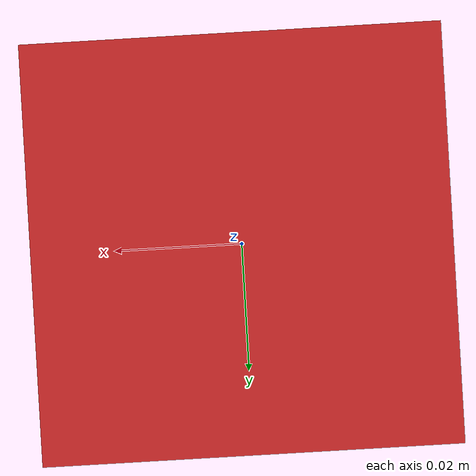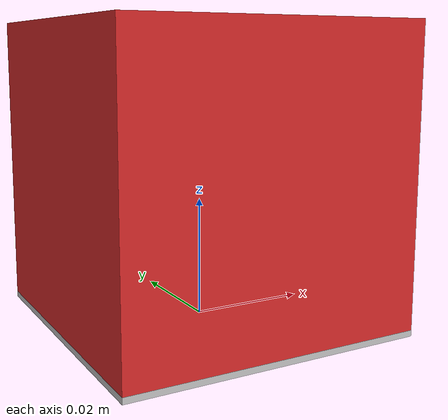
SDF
<?xml version='1.0'?>
<sdf version='1.6'>
  <model name='stone'>
    <link name='face'>
      <inertial>
        <pose>0 0 0.02 0 0 0</pose>
        <mass>0.01</mass>
        <inertia>
          <ixx>0.00002</ixx>
          <iyy>0.00002</iyy>
          <izz>0.00002</izz>
        </inertia>
      </inertial>
      <visual name='visual_face'>
        <geometry>
          <box>
            <size>0.05 0.05 0.001</size>
          </box>
        </geometry>
        <material>
          <script>
            <uri>materials://scripts/script.material</uri>
            <name>Burger</name>
          </script>
        </material>
        <transparency>0</transparency>
        <cast_shadows>1</cast_shadows>
      </visual>
      <collision name='collision_face'>
        <laser_retro>0</laser_retro>
        <max_contacts>10</max_contacts>
        <geometry>
          <box>
            <size>0.05 0.05 0.001</size>
          </box>
        </geometry>
        <surface>
          <friction>
            <ode>
              <mu>5000</mu>
              <mu2>5000</mu2>
              <fdir1>0 0 0</fdir1>
              <slip1>0</slip1>
              <slip2>0</slip2>
            </ode>
            <torsional>
              <coefficient>1</coefficient>
              <patch_radius>0</patch_radius>
              <surface_radius>0</surface_radius>
              <use_patch_radius>1</use_patch_radius>
              <ode>
                <slip>0</slip>
              </ode>
            </torsional>
          </friction>
          <bounce>
            <restitution_coefficient>0</restitution_coefficient>
            <threshold>1e+06</threshold>
          </bounce>
          <contact>
            <collide_without_contact>0</collide_without_contact>
            <collide_without_contact_bitmask>1</collide_without_contact_bitmask>
            <collide_bitmask>1</collide_bitmask>
            <ode>
              <soft_cfm>0</soft_cfm>
              <soft_erp>0.2</soft_erp>
              <kp>1e+13</kp>
              <kd>1</kd>
              <max_vel>0</max_vel>
              <min_depth>0.005</min_depth>
            </ode>
            <bullet>
              <split_impulse>1</split_impulse>
              <split_impulse_penetration_threshold>-0.01</split_impulse_penetration_threshold>
              <soft_cfm>0</soft_cfm>
              <soft_erp>0.2</soft_erp>
              <kp>1e+13</kp>
              <kd>1</kd>
            </bullet>
          </contact>
        </surface>
      </collision>
    </link>

    <link name='link'>
      <pose>0 0 0.025 0 0 0</pose>
      <inertial>
        <pose>0 0 -0.005 0 0 0</pose>
        <mass>0.01</mass>
        <inertia>
          <ixx>0.00004</ixx>
          <iyy>0.00004</iyy>
          <izz>0.00004</izz>
        </inertia>
      </inertial>
      <visual name='visual_link'>
        <geometry>
          <box>
            <size>0.05 0.05 0.049</size>
          </box>
        </geometry>
        <material>
          <script>
            <uri>file://media/materials/scripts/gazebo.material</uri>
            <name>Gazebo/Red</name>
          </script>
        </material>
        <transparency>0</transparency>
        <cast_shadows>1</cast_shadows>
      </visual>
      <collision name='collision_link'>
        <laser_retro>0</laser_retro>
        <max_contacts>10</max_contacts>
        <geometry>
          <box>
            <size>0.05 0.05 0.049</size>
          </box>
        </geometry>
        <surface>
          <friction>
            <ode>
              <mu>5000</mu>
              <mu2>5000</mu2>
              <fdir1>0 0 0</fdir1>
              <slip1>0</slip1>
              <slip2>0</slip2>
            </ode>
            <torsional>
              <coefficient>1</coefficient>
              <patch_radius>0</patch_radius>
              <surface_radius>0</surface_radius>
              <use_patch_radius>1</use_patch_radius>
              <ode>
                <slip>0</slip>
              </ode>
            </torsional>
          </friction>
          <bounce>
            <restitution_coefficient>0</restitution_coefficient>
            <threshold>1e+06</threshold>
          </bounce>
          <contact>
            <collide_without_contact>0</collide_without_contact>
            <collide_without_contact_bitmask>1</collide_without_contact_bitmask>
            <collide_bitmask>1</collide_bitmask>
            <ode>
              <soft_cfm>0</soft_cfm>
              <soft_erp>0.2</soft_erp>
              <kp>1e+13</kp>
              <kd>1</kd>
              <max_vel>0</max_vel>
              <min_depth>0.005</min_depth>
            </ode>
            <bullet>
              <split_impulse>1</split_impulse>
              <split_impulse_penetration_threshold>-0.01</split_impulse_penetration_threshold>
              <soft_cfm>0</soft_cfm>
              <soft_erp>0.2</soft_erp>
              <kp>1e+13</kp>
              <kd>1</kd>
            </bullet>
          </contact>
        </surface>
      </collision>
    </link>

    <joint name="box_joint" type="fixed">
      <parent>link</parent>
      <child>face</child>
      <pose>0 0 0.0005 0 0 0</pose>
    </joint>

  </model>
</sdf>
